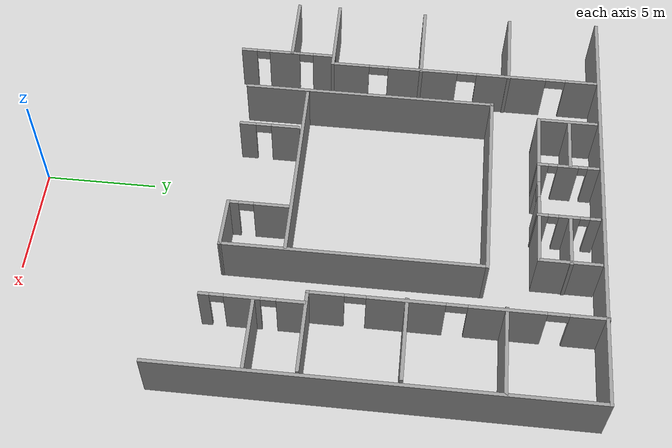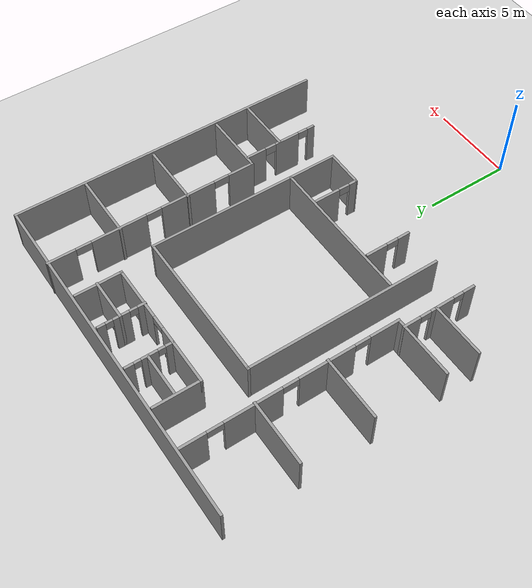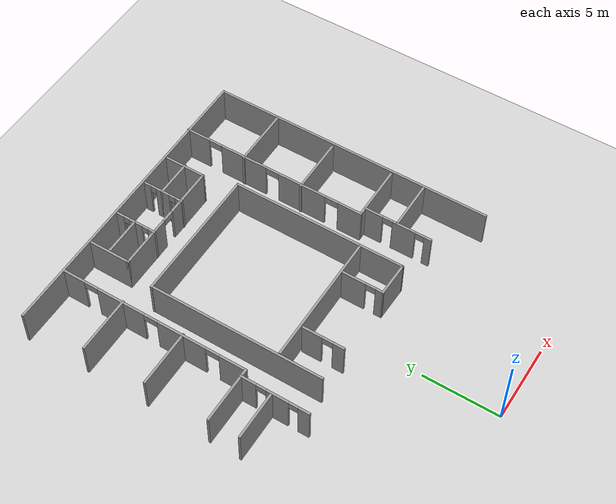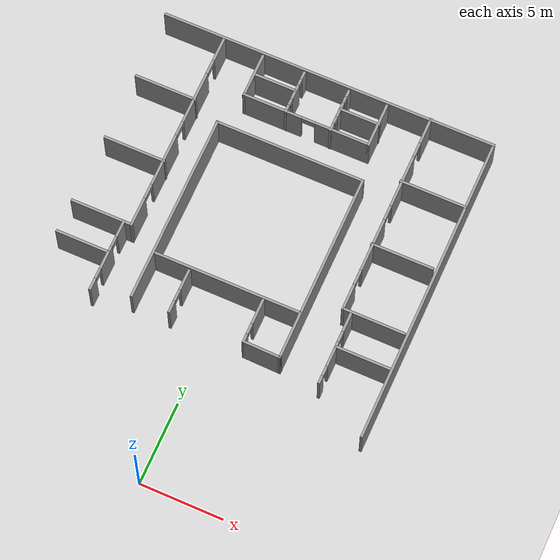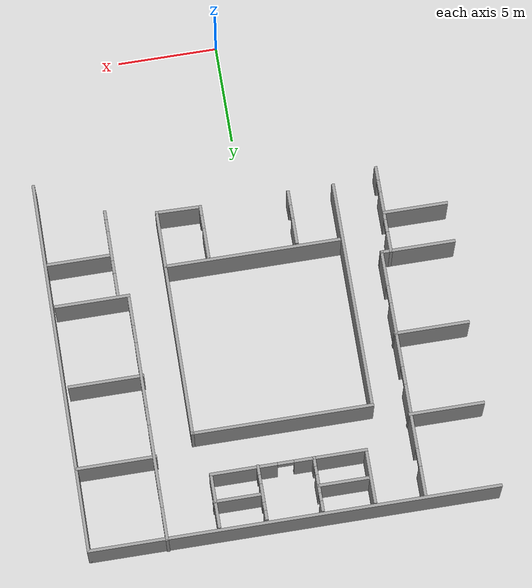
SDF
<sdf version="1.7">
 <world name="default">
  <model name="ground_plane">
   <static>1</static>
   <link name="link">
    <collision name="collision">
     <geometry><plane><normal>0 0 1</normal><size>100 100</size></plane></geometry>
     <surface><friction><ode><mu>100</mu><mu2>50</mu2></ode></friction></surface>
    </collision>
    <visual name="visual">
     <cast_shadows>0</cast_shadows>
     <geometry><plane><normal>0 0 1</normal><size>100 100</size></plane></geometry>
     <material>
      <script><uri>file://media/materials/scripts/gazebo.material</uri><name>Gazebo/Grey</name></script>
     </material>
    </visual>
   </link>
  </model>
  <model name="hospital_world">
   <pose>1.05255 5.28475 0 0 -0 0</pose>
   <link name="Wall_104">
    <collision name="Wall_104_Collision">
     <geometry><box><size>3.25 0.15 2.5</size></box></geometry>
     <pose>0 0 1.25 0 -0 0</pose>
    </collision>
    <visual name="Wall_104_Visual">
     <pose>0 0 1.25 0 -0 0</pose>
     <geometry><box><size>3.25 0.15 2.5</size></box></geometry>
     <material>
      <script><uri>file://media/materials/scripts/gazebo.material</uri><name>Gazebo/Grey</name></script>
      <ambient>1 1 1 1</ambient>
     </material>
     <meta><layer>0</layer></meta>
    </visual>
    <pose>-9.33553 5.41345 0 0 -0 0</pose>
   </link>
   <link name="Wall_107">
    <collision name="Wall_107_Collision">
     <geometry><box><size>2.75 0.15 2.5</size></box></geometry>
     <pose>0 0 1.25 0 -0 0</pose>
    </collision>
    <visual name="Wall_107_Visual">
     <pose>0 0 1.25 0 -0 0</pose>
     <geometry><box><size>2.75 0.15 2.5</size></box></geometry>
     <material>
      <script><uri>file://media/materials/scripts/gazebo.material</uri><name>Gazebo/Grey</name></script>
      <ambient>1 1 1 1</ambient>
     </material>
     <meta><layer>0</layer></meta>
    </visual>
    <pose>-4.86473 18.4237 0 0 -0 -1.5708</pose>
   </link>
   <link name="Wall_108">
    <pose>-1.06473 17.1237 0 0 -0 0</pose>
    <visual name="Wall_108_Visual_0">
     <pose>-2.06983 0 1.25 0 -0 0</pose>
     <geometry><box><size>3.61035 0.15 2.5</size></box></geometry>
     <material>
      <script><uri>file://media/materials/scripts/gazebo.material</uri><name>Gazebo/Grey</name></script>
      <ambient>1 1 1 1</ambient>
     </material>
     <meta><layer>0</layer></meta>
    </visual>
    <collision name="Wall_108_Collision_0">
     <geometry><box><size>3.61035 0.15 2.5</size></box></geometry>
     <pose>-2.06983 0 1.25 0 -0 0</pose>
    </collision>
    <visual name="Wall_108_Visual_1">
     <pose>2.20929 0 1.25 0 -0 0</pose>
     <geometry><box><size>3.33142 0.15 2.5</size></box></geometry>
     <material>
      <script><uri>file://media/materials/scripts/gazebo.material</uri><name>Gazebo/Grey</name></script>
      <ambient>1 1 1 1</ambient>
     </material>
     <meta><layer>0</layer></meta>
    </visual>
    <collision name="Wall_108_Collision_1">
     <geometry><box><size>3.33142 0.15 2.5</size></box></geometry>
     <pose>2.20929 0 1.25 0 -0 0</pose>
    </collision>
    <visual name="Wall_108_Visual_2">
     <pose>0.139461 0 2.25 0 -0 0</pose>
     <geometry><box><size>0.808229 0.15 0.5</size></box></geometry>
     <material>
      <script><uri>file://media/materials/scripts/gazebo.material</uri><name>Gazebo/Grey</name></script>
      <ambient>1 1 1 1</ambient>
     </material>
     <meta><layer>0</layer></meta>
    </visual>
    <collision name="Wall_108_Collision_2">
     <geometry><box><size>0.808229 0.15 0.5</size></box></geometry>
     <pose>0.139461 0 2.25 0 -0 0</pose>
    </collision>
   </link>
   <link name="Wall_109">
    <collision name="Wall_109_Collision">
     <geometry><box><size>2.75 0.15 2.5</size></box></geometry>
     <pose>0 0 1.25 0 -0 0</pose>
    </collision>
    <visual name="Wall_109_Visual">
     <pose>0 0 1.25 0 -0 0</pose>
     <geometry><box><size>2.75 0.15 2.5</size></box></geometry>
     <material>
      <script><uri>file://media/materials/scripts/gazebo.material</uri><name>Gazebo/Grey</name></script>
      <ambient>1 1 1 1</ambient>
     </material>
     <meta><layer>0</layer></meta>
    </visual>
    <pose>2.73527 18.4237 0 0 -0 1.5708</pose>
   </link>
   <link name="Wall_113">
    <collision name="Wall_113_Collision">
     <geometry><box><size>2.5 0.15 2.5</size></box></geometry>
     <pose>0 0 1.25 0 -0 0</pose>
    </collision>
    <visual name="Wall_113_Visual">
     <pose>0 0 1.25 0 -0 0</pose>
     <geometry><box><size>2.5 0.15 2.5</size></box></geometry>
     <material>
      <script><uri>file://media/materials/scripts/gazebo.material</uri><name>Gazebo/Grey</name></script>
      <ambient>1 1 1 1</ambient>
     </material>
     <meta><layer>0</layer></meta>
    </visual>
    <pose>-3.54473 18.5058 0 0 -0 0</pose>
   </link>
   <link name="Wall_115">
    <pose>-2.30971 18.4188 0 0 -0 -1.5708</pose>
    <visual name="Wall_115_Visual_0">
     <pose>-1.11227 0 1.25 0 -0 0</pose>
     <geometry><box><size>0.525457 0.15 2.5</size></box></geometry>
     <material>
      <script><uri>file://media/materials/scripts/gazebo.material</uri><name>Gazebo/Grey</name></script>
      <ambient>1 1 1 1</ambient>
     </material>
     <meta><layer>0</layer></meta>
    </visual>
    <collision name="Wall_115_Collision_0">
     <geometry><box><size>0.525457 0.15 2.5</size></box></geometry>
     <pose>-1.11227 0 1.25 0 -0 0</pose>
    </collision>
    <visual name="Wall_115_Visual_1">
     <pose>0.006111 0 1.25 0 -0 0</pose>
     <geometry><box><size>0.922114 0.15 2.5</size></box></geometry>
     <material>
      <script><uri>file://media/materials/scripts/gazebo.material</uri><name>Gazebo/Grey</name></script>
      <ambient>1 1 1 1</ambient>
     </material>
     <meta><layer>0</layer></meta>
    </visual>
    <collision name="Wall_115_Collision_1">
     <geometry><box><size>0.922114 0.15 2.5</size></box></geometry>
     <pose>0.006111 0 1.25 0 -0 0</pose>
    </collision>
    <visual name="Wall_115_Visual_2">
     <pose>1.12503 0 1.25 0 -0 0</pose>
     <geometry><box><size>0.499936 0.15 2.5</size></box></geometry>
     <material>
      <script><uri>file://media/materials/scripts/gazebo.material</uri><name>Gazebo/Grey</name></script>
      <ambient>1 1 1 1</ambient>
     </material>
     <meta><layer>0</layer></meta>
    </visual>
    <collision name="Wall_115_Collision_2">
     <geometry><box><size>0.499936 0.15 2.5</size></box></geometry>
     <pose>1.12503 0 1.25 0 -0 0</pose>
    </collision>
    <visual name="Wall_115_Visual_3">
     <pose>-0.652245 0 2.25 0 -0 0</pose>
     <geometry><box><size>0.394596 0.15 0.5</size></box></geometry>
     <material>
      <script><uri>file://media/materials/scripts/gazebo.material</uri><name>Gazebo/Grey</name></script>
      <ambient>1 1 1 1</ambient>
     </material>
     <meta><layer>0</layer></meta>
    </visual>
    <collision name="Wall_115_Collision_3">
     <geometry><box><size>0.394596 0.15 0.5</size></box></geometry>
     <pose>-0.652245 0 2.25 0 -0 0</pose>
    </collision>
    <visual name="Wall_115_Visual_4">
     <pose>0.671116 0 2.25 0 -0 0</pose>
     <geometry><box><size>0.407896 0.15 0.5</size></box></geometry>
     <material>
      <script><uri>file://media/materials/scripts/gazebo.material</uri><name>Gazebo/Grey</name></script>
      <ambient>1 1 1 1</ambient>
     </material>
     <meta><layer>0</layer></meta>
    </visual>
    <collision name="Wall_115_Collision_4">
     <geometry><box><size>0.407896 0.15 0.5</size></box></geometry>
     <pose>0.671116 0 2.25 0 -0 0</pose>
    </collision>
   </link>
   <link name="Wall_117">
    <pose>0.430111 18.3922 0 0 -0 -1.5708</pose>
    <visual name="Wall_117_Visual_0">
     <pose>-1.13887 0 1.25 0 -0 0</pose>
     <geometry><box><size>0.472258 0.15 2.5</size></box></geometry>
     <material>
      <script><uri>file://media/materials/scripts/gazebo.material</uri><name>Gazebo/Grey</name></script>
      <ambient>1 1 1 1</ambient>
     </material>
     <meta><layer>0</layer></meta>
    </visual>
    <collision name="Wall_117_Collision_0">
     <geometry><box><size>0.472258 0.15 2.5</size></box></geometry>
     <pose>-1.13887 0 1.25 0 -0 0</pose>
    </collision>
    <visual name="Wall_117_Visual_1">
     <pose>-0.033788 0 1.25 0 -0 0</pose>
     <geometry><box><size>0.922114 0.15 2.5</size></box></geometry>
     <material>
      <script><uri>file://media/materials/scripts/gazebo.material</uri><name>Gazebo/Grey</name></script>
      <ambient>1 1 1 1</ambient>
     </material>
     <meta><layer>0</layer></meta>
    </visual>
    <collision name="Wall_117_Collision_1">
     <geometry><box><size>0.922114 0.15 2.5</size></box></geometry>
     <pose>-0.033788 0 1.25 0 -0 0</pose>
    </collision>
    <visual name="Wall_117_Visual_2">
     <pose>1.12503 0 1.25 0 -0 0</pose>
     <geometry><box><size>0.499935 0.15 2.5</size></box></geometry>
     <material>
      <script><uri>file://media/materials/scripts/gazebo.material</uri><name>Gazebo/Grey</name></script>
      <ambient>1 1 1 1</ambient>
     </material>
     <meta><layer>0</layer></meta>
    </visual>
    <collision name="Wall_117_Collision_2">
     <geometry><box><size>0.499935 0.15 2.5</size></box></geometry>
     <pose>1.12503 0 1.25 0 -0 0</pose>
    </collision>
    <visual name="Wall_117_Visual_3">
     <pose>-0.698793 0 2.25 0 -0 0</pose>
     <geometry><box><size>0.407896 0.15 0.5</size></box></geometry>
     <material>
      <script><uri>file://media/materials/scripts/gazebo.material</uri><name>Gazebo/Grey</name></script>
      <ambient>1 1 1 1</ambient>
     </material>
     <meta><layer>0</layer></meta>
    </visual>
    <collision name="Wall_117_Collision_3">
     <geometry><box><size>0.407896 0.15 0.5</size></box></geometry>
     <pose>-0.698793 0 2.25 0 -0 0</pose>
    </collision>
    <visual name="Wall_117_Visual_4">
     <pose>0.651167 0 2.25 0 -0 0</pose>
     <geometry><box><size>0.447797 0.15 0.5</size></box></geometry>
     <material>
      <script><uri>file://media/materials/scripts/gazebo.material</uri><name>Gazebo/Grey</name></script>
      <ambient>1 1 1 1</ambient>
     </material>
     <meta><layer>0</layer></meta>
    </visual>
    <collision name="Wall_117_Collision_4">
     <geometry><box><size>0.447797 0.15 0.5</size></box></geometry>
     <pose>0.651167 0 2.25 0 -0 0</pose>
    </collision>
   </link>
   <link name="Wall_119">
    <collision name="Wall_119_Collision">
     <geometry><box><size>2.5 0.15 2.5</size></box></geometry>
     <pose>0 0 1.25 0 -0 0</pose>
    </collision>
    <visual name="Wall_119_Visual">
     <pose>0 0 1.25 0 -0 0</pose>
     <geometry><box><size>2.5 0.15 2.5</size></box></geometry>
     <material>
      <script><uri>file://media/materials/scripts/gazebo.material</uri><name>Gazebo/Grey</name></script>
      <ambient>1 1 1 1</ambient>
     </material>
     <meta><layer>0</layer></meta>
    </visual>
    <pose>1.60511 18.4792 0 0 -0 0</pose>
   </link>
   <link name="Wall_131">
    <collision name="Wall_131_Collision">
     <geometry><box><size>11.5 0.15 2.5</size></box></geometry>
     <pose>0 0 1.25 0 -0 0</pose>
    </collision>
    <visual name="Wall_131_Visual">
     <pose>0 0 1.25 0 -0 0</pose>
     <geometry><box><size>11.5 0.15 2.5</size></box></geometry>
     <material>
      <script><uri>file://media/materials/scripts/gazebo.material</uri><name>Gazebo/Grey</name></script>
      <ambient>1 1 1 1</ambient>
     </material>
     <meta><layer>0</layer></meta>
    </visual>
    <pose>-5.53184 9.2924 0 0 -0 -1.5708</pose>
   </link>
   <link name="Wall_133">
    <collision name="Wall_133_Collision">
     <geometry><box><size>11.5 0.15 2.5</size></box></geometry>
     <pose>0 0 1.25 0 -0 0</pose>
    </collision>
    <visual name="Wall_133_Visual">
     <pose>0 0 1.25 0 -0 0</pose>
     <geometry><box><size>11.5 0.15 2.5</size></box></geometry>
     <material>
      <script><uri>file://media/materials/scripts/gazebo.material</uri><name>Gazebo/Grey</name></script>
      <ambient>1 1 1 1</ambient>
     </material>
     <meta><layer>0</layer></meta>
    </visual>
    <pose>3.30287 9.2924 0 0 -0 1.5708</pose>
   </link>
   <link name="Wall_134">
    <collision name="Wall_134_Collision">
     <geometry><box><size>9 0.15 2.5</size></box></geometry>
     <pose>0 0 1.25 0 -0 0</pose>
    </collision>
    <visual name="Wall_134_Visual">
     <pose>0 0 1.25 0 -0 0</pose>
     <geometry><box><size>9 0.15 2.5</size></box></geometry>
     <material>
      <script><uri>file://media/materials/scripts/gazebo.material</uri><name>Gazebo/Grey</name></script>
      <ambient>1 1 1 1</ambient>
     </material>
     <meta><layer>0</layer></meta>
    </visual>
    <pose>-1.12213 14.9674 0 0 -0 3.14159</pose>
   </link>
   <link name="Wall_136">
    <collision name="Wall_136_Collision">
     <geometry><box><size>8.75 0.15 2.5</size></box></geometry>
     <pose>0 0 1.25 0 -0 0</pose>
    </collision>
    <visual name="Wall_136_Visual">
     <pose>0 0 1.25 0 -0 0</pose>
     <geometry><box><size>8.75 0.15 2.5</size></box></geometry>
     <material>
      <script><uri>file://media/materials/scripts/gazebo.material</uri><name>Gazebo/Grey</name></script>
      <ambient>1 1 1 1</ambient>
     </material>
     <meta><layer>0</layer></meta>
    </visual>
    <pose>-1.06193 6.42009 0 0 -0 0</pose>
   </link>
   <link name="Wall_144">
    <pose>-3.27395 4.90802 0 0 -0 -1.5708</pose>
    <visual name="Wall_144_Visual_0">
     <pose>-0.725746 0 1.25 0 -0 0</pose>
     <geometry><box><size>1.29851 0.15 2.5</size></box></geometry>
     <material>
      <script><uri>file://media/materials/scripts/gazebo.material</uri><name>Gazebo/Grey</name></script>
      <ambient>1 1 1 1</ambient>
     </material>
     <meta><layer>0</layer></meta>
    </visual>
    <collision name="Wall_144_Collision_0">
     <geometry><box><size>1.29851 0.15 2.5</size></box></geometry>
     <pose>-0.725746 0 1.25 0 -0 0</pose>
    </collision>
    <visual name="Wall_144_Visual_1">
     <pose>1.00095 0 1.25 0 -0 0</pose>
     <geometry><box><size>0.748103 0.15 2.5</size></box></geometry>
     <material>
      <script><uri>file://media/materials/scripts/gazebo.material</uri><name>Gazebo/Grey</name></script>
      <ambient>1 1 1 1</ambient>
     </material>
     <meta><layer>0</layer></meta>
    </visual>
    <collision name="Wall_144_Collision_1">
     <geometry><box><size>0.748103 0.15 2.5</size></box></geometry>
     <pose>1.00095 0 1.25 0 -0 0</pose>
    </collision>
    <visual name="Wall_144_Visual_2">
     <pose>0.275202 0 2.25 0 -0 0</pose>
     <geometry><box><size>0.70339 0.15 0.5</size></box></geometry>
     <material>
      <script><uri>file://media/materials/scripts/gazebo.material</uri><name>Gazebo/Grey</name></script>
      <ambient>1 1 1 1</ambient>
     </material>
     <meta><layer>0</layer></meta>
    </visual>
    <collision name="Wall_144_Collision_2">
     <geometry><box><size>0.70339 0.15 0.5</size></box></geometry>
     <pose>0.275202 0 2.25 0 -0 0</pose>
    </collision>
   </link>
   <link name="Wall_146">
    <pose>1.13162 4.96027 0 0 -0 -1.5708</pose>
    <visual name="Wall_146_Visual_0">
     <pose>-0.595533 0 1.25 0 -0 0</pose>
     <geometry><box><size>1.55893 0.15 2.5</size></box></geometry>
     <material>
      <script><uri>file://media/materials/scripts/gazebo.material</uri><name>Gazebo/Grey</name></script>
      <ambient>1 1 1 1</ambient>
     </material>
     <meta><layer>0</layer></meta>
    </visual>
    <collision name="Wall_146_Collision_0">
     <geometry><box><size>1.55893 0.15 2.5</size></box></geometry>
     <pose>-0.595533 0 1.25 0 -0 0</pose>
    </collision>
    <visual name="Wall_146_Visual_1">
     <pose>1.10803 0 1.25 0 -0 0</pose>
     <geometry><box><size>0.533938 0.15 2.5</size></box></geometry>
     <material>
      <script><uri>file://media/materials/scripts/gazebo.material</uri><name>Gazebo/Grey</name></script>
      <ambient>1 1 1 1</ambient>
     </material>
     <meta><layer>0</layer></meta>
    </visual>
    <collision name="Wall_146_Collision_1">
     <geometry><box><size>0.533938 0.15 2.5</size></box></geometry>
     <pose>1.10803 0 1.25 0 -0 0</pose>
    </collision>
    <visual name="Wall_146_Visual_2">
     <pose>0.512498 0 2.25 0 -0 0</pose>
     <geometry><box><size>0.657129 0.15 0.5</size></box></geometry>
     <material>
      <script><uri>file://media/materials/scripts/gazebo.material</uri><name>Gazebo/Grey</name></script>
      <ambient>1 1 1 1</ambient>
     </material>
     <meta><layer>0</layer></meta>
    </visual>
    <collision name="Wall_146_Collision_2">
     <geometry><box><size>0.657129 0.15 0.5</size></box></geometry>
     <pose>0.512498 0 2.25 0 -0 0</pose>
    </collision>
   </link>
   <link name="Wall_148">
    <collision name="Wall_148_Collision">
     <geometry><box><size>2.32167 0.15 2.5</size></box></geometry>
     <pose>0 0 1.25 0 -0 0</pose>
    </collision>
    <visual name="Wall_148_Visual">
     <pose>0 0 1.25 0 -0 0</pose>
     <geometry><box><size>2.32167 0.15 2.5</size></box></geometry>
     <material>
      <script><uri>file://media/materials/scripts/gazebo.material</uri><name>Gazebo/Grey</name></script>
      <ambient>1 1 1 1</ambient>
     </material>
     <meta><layer>0</layer></meta>
    </visual>
    <pose>2.21725 3.63883 0 0 -0 -0.019743</pose>
   </link>
   <link name="Wall_18">
    <pose>-7.31204 13.579 0 0 -0 -1.5708</pose>
    <visual name="Wall_18_Visual_0">
     <pose>-5.51242 0 1.25 0 -0 0</pose>
     <geometry><box><size>1.47516 0.15 2.5</size></box></geometry>
     <material>
      <script><uri>file://media/materials/scripts/gazebo.material</uri><name>Gazebo/Grey</name></script>
      <ambient>1 1 1 1</ambient>
     </material>
     <meta><layer>0</layer></meta>
    </visual>
    <collision name="Wall_18_Collision_0">
     <geometry><box><size>1.47516 0.15 2.5</size></box></geometry>
     <pose>-5.51242 0 1.25 0 -0 0</pose>
    </collision>
    <visual name="Wall_18_Visual_1">
     <pose>-2.24943 0 1.25 0 -0 0</pose>
     <geometry><box><size>3.25082 0.15 2.5</size></box></geometry>
     <material>
      <script><uri>file://media/materials/scripts/gazebo.material</uri><name>Gazebo/Grey</name></script>
      <ambient>1 1 1 1</ambient>
     </material>
     <meta><layer>0</layer></meta>
    </visual>
    <collision name="Wall_18_Collision_1">
     <geometry><box><size>3.25082 0.15 2.5</size></box></geometry>
     <pose>-2.24943 0 1.25 0 -0 0</pose>
    </collision>
    <visual name="Wall_18_Visual_2">
     <pose>1.90958 0 1.25 0 -0 0</pose>
     <geometry><box><size>3.2672 0.15 2.5</size></box></geometry>
     <material>
      <script><uri>file://media/materials/scripts/gazebo.material</uri><name>Gazebo/Grey</name></script>
      <ambient>1 1 1 1</ambient>
     </material>
     <meta><layer>0</layer></meta>
    </visual>
    <collision name="Wall_18_Collision_2">
     <geometry><box><size>3.2672 0.15 2.5</size></box></geometry>
     <pose>1.90958 0 1.25 0 -0 0</pose>
    </collision>
    <visual name="Wall_18_Visual_3">
     <pose>5.34659 0 1.25 0 -0 0</pose>
     <geometry><box><size>1.80682 0.15 2.5</size></box></geometry>
     <material>
      <script><uri>file://media/materials/scripts/gazebo.material</uri><name>Gazebo/Grey</name></script>
      <ambient>1 1 1 1</ambient>
     </material>
     <meta><layer>0</layer></meta>
    </visual>
    <collision name="Wall_18_Collision_3">
     <geometry><box><size>1.80682 0.15 2.5</size></box></geometry>
     <pose>5.34659 0 1.25 0 -0 0</pose>
    </collision>
    <visual name="Wall_18_Visual_4">
     <pose>-4.32484 0 2.25 0 -0 0</pose>
     <geometry><box><size>0.9 0.15 0.5</size></box></geometry>
     <material>
      <script><uri>file://media/materials/scripts/gazebo.material</uri><name>Gazebo/Grey</name></script>
      <ambient>1 1 1 1</ambient>
     </material>
     <meta><layer>0</layer></meta>
    </visual>
    <collision name="Wall_18_Collision_4">
     <geometry><box><size>0.9 0.15 0.5</size></box></geometry>
     <pose>-4.32484 0 2.25 0 -0 0</pose>
    </collision>
    <visual name="Wall_18_Visual_5">
     <pose>-0.174016 0 2.25 0 -0 0</pose>
     <geometry><box><size>0.9 0.15 0.5</size></box></geometry>
     <material>
      <script><uri>file://media/materials/scripts/gazebo.material</uri><name>Gazebo/Grey</name></script>
      <ambient>1 1 1 1</ambient>
     </material>
     <meta><layer>0</layer></meta>
    </visual>
    <collision name="Wall_18_Collision_5">
     <geometry><box><size>0.9 0.15 0.5</size></box></geometry>
     <pose>-0.174016 0 2.25 0 -0 0</pose>
    </collision>
    <visual name="Wall_18_Visual_6">
     <pose>3.99318 0 2.25 0 -0 0</pose>
     <geometry><box><size>0.9 0.15 0.5</size></box></geometry>
     <material>
      <script><uri>file://media/materials/scripts/gazebo.material</uri><name>Gazebo/Grey</name></script>
      <ambient>1 1 1 1</ambient>
     </material>
     <meta><layer>0</layer></meta>
    </visual>
    <collision name="Wall_18_Collision_6">
     <geometry><box><size>0.9 0.15 0.5</size></box></geometry>
     <pose>3.99318 0 2.25 0 -0 0</pose>
    </collision>
   </link>
   <link name="Wall_19">
    <collision name="Wall_19_Collision">
     <geometry><box><size>3.75 0.15 2.5</size></box></geometry>
     <pose>0 0 1.25 0 -0 0</pose>
    </collision>
    <visual name="Wall_19_Visual">
     <pose>0 0 1.25 0 -0 0</pose>
     <geometry><box><size>3.75 0.15 2.5</size></box></geometry>
     <material>
      <script><uri>file://media/materials/scripts/gazebo.material</uri><name>Gazebo/Grey</name></script>
      <ambient>1 1 1 1</ambient>
     </material>
     <meta><layer>0</layer></meta>
    </visual>
    <pose>-9.11204 7.40401 0 0 -0 3.14159</pose>
   </link>
   <link name="Wall_21">
    <pose>-7.76807 5.23849 0 0 -0 -1.5708</pose>
    <visual name="Wall_21_Visual_0">
     <pose>-1.71434 0 1.25 0 -0 0</pose>
     <geometry><box><size>1.07133 0.15 2.5</size></box></geometry>
     <material>
      <script><uri>file://media/materials/scripts/gazebo.material</uri><name>Gazebo/Grey</name></script>
      <ambient>1 1 1 1</ambient>
     </material>
     <meta><layer>0</layer></meta>
    </visual>
    <collision name="Wall_21_Collision_0">
     <geometry><box><size>1.07133 0.15 2.5</size></box></geometry>
     <pose>-1.71434 0 1.25 0 -0 0</pose>
    </collision>
    <visual name="Wall_21_Visual_1">
     <pose>0.184359 0 1.25 0 -0 0</pose>
     <geometry><box><size>1.44316 0.15 2.5</size></box></geometry>
     <material>
      <script><uri>file://media/materials/scripts/gazebo.material</uri><name>Gazebo/Grey</name></script>
      <ambient>1 1 1 1</ambient>
     </material>
     <meta><layer>0</layer></meta>
    </visual>
    <collision name="Wall_21_Collision_1">
     <geometry><box><size>1.44316 0.15 2.5</size></box></geometry>
     <pose>0.184359 0 1.25 0 -0 0</pose>
    </collision>
    <visual name="Wall_21_Visual_2">
     <pose>1.88349 0 1.25 0 -0 0</pose>
     <geometry><box><size>0.733026 0.15 2.5</size></box></geometry>
     <material>
      <script><uri>file://media/materials/scripts/gazebo.material</uri><name>Gazebo/Grey</name></script>
      <ambient>1 1 1 1</ambient>
     </material>
     <meta><layer>0</layer></meta>
    </visual>
    <collision name="Wall_21_Collision_2">
     <geometry><box><size>0.733026 0.15 2.5</size></box></geometry>
     <pose>1.88349 0 1.25 0 -0 0</pose>
    </collision>
    <visual name="Wall_21_Visual_3">
     <pose>-0.857948 0 2.25 0 -0 0</pose>
     <geometry><box><size>0.641451 0.15 0.5</size></box></geometry>
     <material>
      <script><uri>file://media/materials/scripts/gazebo.material</uri><name>Gazebo/Grey</name></script>
      <ambient>1 1 1 1</ambient>
     </material>
     <meta><layer>0</layer></meta>
    </visual>
    <collision name="Wall_21_Collision_3">
     <geometry><box><size>0.641451 0.15 0.5</size></box></geometry>
     <pose>-0.857948 0 2.25 0 -0 0</pose>
    </collision>
    <visual name="Wall_21_Visual_4">
     <pose>1.21146 0 2.25 0 -0 0</pose>
     <geometry><box><size>0.611034 0.15 0.5</size></box></geometry>
     <material>
      <script><uri>file://media/materials/scripts/gazebo.material</uri><name>Gazebo/Grey</name></script>
      <ambient>1 1 1 1</ambient>
     </material>
     <meta><layer>0</layer></meta>
    </visual>
    <collision name="Wall_21_Collision_4">
     <geometry><box><size>0.611034 0.15 0.5</size></box></geometry>
     <pose>1.21146 0 2.25 0 -0 0</pose>
    </collision>
   </link>
   <link name="Wall_24">
    <collision name="Wall_24_Collision">
     <geometry><box><size>3.75 0.15 2.5</size></box></geometry>
     <pose>0 0 1.25 0 -0 0</pose>
    </collision>
    <visual name="Wall_24_Visual">
     <pose>0 0 1.25 0 -0 0</pose>
     <geometry><box><size>3.75 0.15 2.5</size></box></geometry>
     <material>
      <script><uri>file://media/materials/scripts/gazebo.material</uri><name>Gazebo/Grey</name></script>
      <ambient>1 1 1 1</ambient>
     </material>
     <meta><layer>0</layer></meta>
    </visual>
    <pose>-9.0664 11.5943 0 0 -0 0</pose>
   </link>
   <link name="Wall_26">
    <collision name="Wall_26_Collision">
     <geometry><box><size>3.75 0.15 2.5</size></box></geometry>
     <pose>0 0 1.25 0 -0 0</pose>
    </collision>
    <visual name="Wall_26_Visual">
     <pose>0 0 1.25 0 -0 0</pose>
     <geometry><box><size>3.75 0.15 2.5</size></box></geometry>
     <material>
      <script><uri>file://media/materials/scripts/gazebo.material</uri><name>Gazebo/Grey</name></script>
      <ambient>1 1 1 1</ambient>
     </material>
     <meta><layer>0</layer></meta>
    </visual>
    <pose>-9.0664 15.7174 0 0 -0 0</pose>
   </link>
   <link name="Wall_31">
    <pose>5.31032 13.7717 0 0 -0 -1.5708</pose>
    <visual name="Wall_31_Visual_0">
     <pose>-5.42002 0 1.25 0 -0 0</pose>
     <geometry><box><size>1.65996 0.15 2.5</size></box></geometry>
     <material>
      <script><uri>file://media/materials/scripts/gazebo.material</uri><name>Gazebo/Grey</name></script>
      <ambient>1 1 1 1</ambient>
     </material>
     <meta><layer>0</layer></meta>
    </visual>
    <collision name="Wall_31_Collision_0">
     <geometry><box><size>1.65996 0.15 2.5</size></box></geometry>
     <pose>-5.42002 0 1.25 0 -0 0</pose>
    </collision>
    <visual name="Wall_31_Visual_1">
     <pose>-2.06834 0 1.25 0 -0 0</pose>
     <geometry><box><size>3.2434 0.15 2.5</size></box></geometry>
     <material>
      <script><uri>file://media/materials/scripts/gazebo.material</uri><name>Gazebo/Grey</name></script>
      <ambient>1 1 1 1</ambient>
     </material>
     <meta><layer>0</layer></meta>
    </visual>
    <collision name="Wall_31_Collision_1">
     <geometry><box><size>3.2434 0.15 2.5</size></box></geometry>
     <pose>-2.06834 0 1.25 0 -0 0</pose>
    </collision>
    <visual name="Wall_31_Visual_2">
     <pose>2.09517 0 1.25 0 -0 0</pose>
     <geometry><box><size>3.28362 0.15 2.5</size></box></geometry>
     <material>
      <script><uri>file://media/materials/scripts/gazebo.material</uri><name>Gazebo/Grey</name></script>
      <ambient>1 1 1 1</ambient>
     </material>
     <meta><layer>0</layer></meta>
    </visual>
    <collision name="Wall_31_Collision_2">
     <geometry><box><size>3.28362 0.15 2.5</size></box></geometry>
     <pose>2.09517 0 1.25 0 -0 0</pose>
    </collision>
    <visual name="Wall_31_Visual_3">
     <pose>5.44349 0 1.25 0 -0 0</pose>
     <geometry><box><size>1.61302 0.15 2.5</size></box></geometry>
     <material>
      <script><uri>file://media/materials/scripts/gazebo.material</uri><name>Gazebo/Grey</name></script>
      <ambient>1 1 1 1</ambient>
     </material>
     <meta><layer>0</layer></meta>
    </visual>
    <collision name="Wall_31_Collision_3">
     <geometry><box><size>1.61302 0.15 2.5</size></box></geometry>
     <pose>5.44349 0 1.25 0 -0 0</pose>
    </collision>
    <visual name="Wall_31_Visual_4">
     <pose>-4.14004 0 2.25 0 -0 0</pose>
     <geometry><box><size>0.9 0.15 0.5</size></box></geometry>
     <material>
      <script><uri>file://media/materials/scripts/gazebo.material</uri><name>Gazebo/Grey</name></script>
      <ambient>1 1 1 1</ambient>
     </material>
     <meta><layer>0</layer></meta>
    </visual>
    <collision name="Wall_31_Collision_4">
     <geometry><box><size>0.9 0.15 0.5</size></box></geometry>
     <pose>-4.14004 0 2.25 0 -0 0</pose>
    </collision>
    <visual name="Wall_31_Visual_5">
     <pose>0.003358 0 2.25 0 -0 0</pose>
     <geometry><box><size>0.9 0.15 0.5</size></box></geometry>
     <material>
      <script><uri>file://media/materials/scripts/gazebo.material</uri><name>Gazebo/Grey</name></script>
      <ambient>1 1 1 1</ambient>
     </material>
     <meta><layer>0</layer></meta>
    </visual>
    <collision name="Wall_31_Collision_5">
     <geometry><box><size>0.9 0.15 0.5</size></box></geometry>
     <pose>0.003358 0 2.25 0 -0 0</pose>
    </collision>
    <visual name="Wall_31_Visual_6">
     <pose>4.18698 0 2.25 0 -0 0</pose>
     <geometry><box><size>0.9 0.15 0.5</size></box></geometry>
     <material>
      <script><uri>file://media/materials/scripts/gazebo.material</uri><name>Gazebo/Grey</name></script>
      <ambient>1 1 1 1</ambient>
     </material>
     <meta><layer>0</layer></meta>
    </visual>
    <collision name="Wall_31_Collision_6">
     <geometry><box><size>0.9 0.15 0.5</size></box></geometry>
     <pose>4.18698 0 2.25 0 -0 0</pose>
    </collision>
   </link>
   <link name="Wall_32">
    <collision name="Wall_32_Collision">
     <geometry><box><size>3.75 0.15 2.5</size></box></geometry>
     <pose>0 0 1.25 0 -0 0</pose>
    </collision>
    <visual name="Wall_32_Visual">
     <pose>0 0 1.25 0 -0 0</pose>
     <geometry><box><size>3.75 0.15 2.5</size></box></geometry>
     <material>
      <script><uri>file://media/materials/scripts/gazebo.material</uri><name>Gazebo/Grey</name></script>
      <ambient>1 1 1 1</ambient>
     </material>
     <meta><layer>0</layer></meta>
    </visual>
    <pose>7.11032 7.59673 0 0 -0 0</pose>
   </link>
   <link name="Wall_34">
    <collision name="Wall_34_Collision">
     <geometry><box><size>3.75 0.15 2.5</size></box></geometry>
     <pose>0 0 1.25 0 -0 0</pose>
    </collision>
    <visual name="Wall_34_Visual">
     <pose>0 0 1.25 0 -0 0</pose>
     <geometry><box><size>3.75 0.15 2.5</size></box></geometry>
     <material>
      <script><uri>file://media/materials/scripts/gazebo.material</uri><name>Gazebo/Grey</name></script>
      <ambient>1 1 1 1</ambient>
     </material>
     <meta><layer>0</layer></meta>
    </visual>
    <pose>7.04914 11.718 0 0 -0 0</pose>
   </link>
   <link name="Wall_37">
    <collision name="Wall_37_Collision">
     <geometry><box><size>4 0.15 2.5</size></box></geometry>
     <pose>0 0 1.25 0 -0 0</pose>
    </collision>
    <visual name="Wall_37_Visual">
     <pose>0 0 1.25 0 -0 0</pose>
     <geometry><box><size>4 0.15 2.5</size></box></geometry>
     <material>
      <script><uri>file://media/materials/scripts/gazebo.material</uri><name>Gazebo/Grey</name></script>
      <ambient>1 1 1 1</ambient>
     </material>
     <meta><layer>0</layer></meta>
    </visual>
    <pose>7.17414 15.817 0 0 -0 0</pose>
   </link>
   <link name="Wall_39">
    <pose>5.82614 5.3492 0 0 -0 -1.5708</pose>
    <visual name="Wall_39_Visual_0">
     <pose>-1.63241 0 1.25 0 -0 0</pose>
     <geometry><box><size>1.23518 0.15 2.5</size></box></geometry>
     <material>
      <script><uri>file://media/materials/scripts/gazebo.material</uri><name>Gazebo/Grey</name></script>
      <ambient>1 1 1 1</ambient>
     </material>
     <meta><layer>0</layer></meta>
    </visual>
    <collision name="Wall_39_Collision_0">
     <geometry><box><size>1.23518 0.15 2.5</size></box></geometry>
     <pose>-1.63241 0 1.25 0 -0 0</pose>
    </collision>
    <visual name="Wall_39_Visual_1">
     <pose>0.41069 0 1.25 0 -0 0</pose>
     <geometry><box><size>1.53374 0.15 2.5</size></box></geometry>
     <material>
      <script><uri>file://media/materials/scripts/gazebo.material</uri><name>Gazebo/Grey</name></script>
      <ambient>1 1 1 1</ambient>
     </material>
     <meta><layer>0</layer></meta>
    </visual>
    <collision name="Wall_39_Collision_1">
     <geometry><box><size>1.53374 0.15 2.5</size></box></geometry>
     <pose>0.41069 0 1.25 0 -0 0</pose>
    </collision>
    <visual name="Wall_39_Visual_2">
     <pose>2.01293 0 1.25 0 -0 0</pose>
     <geometry><box><size>0.474142 0.15 2.5</size></box></geometry>
     <material>
      <script><uri>file://media/materials/scripts/gazebo.material</uri><name>Gazebo/Grey</name></script>
      <ambient>1 1 1 1</ambient>
     </material>
     <meta><layer>0</layer></meta>
    </visual>
    <collision name="Wall_39_Collision_2">
     <geometry><box><size>0.474142 0.15 2.5</size></box></geometry>
     <pose>2.01293 0 1.25 0 -0 0</pose>
    </collision>
    <visual name="Wall_39_Visual_3">
     <pose>-0.6855 0 2.25 0 -0 0</pose>
     <geometry><box><size>0.658637 0.15 0.5</size></box></geometry>
     <material>
      <script><uri>file://media/materials/scripts/gazebo.material</uri><name>Gazebo/Grey</name></script>
      <ambient>1 1 1 1</ambient>
     </material>
     <meta><layer>0</layer></meta>
    </visual>
    <collision name="Wall_39_Collision_3">
     <geometry><box><size>0.658637 0.15 0.5</size></box></geometry>
     <pose>-0.6855 0 2.25 0 -0 0</pose>
    </collision>
    <visual name="Wall_39_Visual_4">
     <pose>1.47671 0 2.25 0 -0 0</pose>
     <geometry><box><size>0.598296 0.15 0.5</size></box></geometry>
     <material>
      <script><uri>file://media/materials/scripts/gazebo.material</uri><name>Gazebo/Grey</name></script>
      <ambient>1 1 1 1</ambient>
     </material>
     <meta><layer>0</layer></meta>
    </visual>
    <collision name="Wall_39_Collision_4">
     <geometry><box><size>0.598296 0.15 0.5</size></box></geometry>
     <pose>1.47671 0 2.25 0 -0 0</pose>
    </collision>
   </link>
   <link name="Wall_42">
    <collision name="Wall_42_Collision">
     <geometry><box><size>3.25 0.15 2.5</size></box></geometry>
     <pose>0 0 1.25 0 -0 0</pose>
    </collision>
    <visual name="Wall_42_Visual">
     <pose>0 0 1.25 0 -0 0</pose>
     <geometry><box><size>3.25 0.15 2.5</size></box></geometry>
     <material>
      <script><uri>file://media/materials/scripts/gazebo.material</uri><name>Gazebo/Grey</name></script>
      <ambient>1 1 1 1</ambient>
     </material>
     <meta><layer>0</layer></meta>
    </visual>
    <pose>7.42682 5.41471 0 0 -0 0</pose>
   </link>
   <link name="Wall_5">
    <collision name="Wall_5_Collision">
     <geometry><box><size>20.25 0.15 2.5</size></box></geometry>
     <pose>0 0 1.25 0 -0 0</pose>
    </collision>
    <visual name="Wall_5_Visual">
     <pose>0 0 1.25 0 -0 0</pose>
     <geometry><box><size>20.25 0.15 2.5</size></box></geometry>
     <material>
      <script><uri>file://media/materials/scripts/gazebo.material</uri><name>Gazebo/Grey</name></script>
      <ambient>1 1 1 1</ambient>
     </material>
     <meta><layer>0</layer></meta>
    </visual>
    <pose>-0.924999 19.9033 0 0 -0 0</pose>
   </link>
   <link name="Wall_6">
    <collision name="Wall_6_Collision">
     <geometry><box><size>18.75 0.15 2.5</size></box></geometry>
     <pose>0 0 1.25 0 -0 0</pose>
    </collision>
    <visual name="Wall_6_Visual">
     <pose>0 0 1.25 0 -0 0</pose>
     <geometry><box><size>18.75 0.15 2.5</size></box></geometry>
     <material>
      <script><uri>file://media/materials/scripts/gazebo.material</uri><name>Gazebo/Grey</name></script>
      <ambient>1 1 1 1</ambient>
     </material>
     <meta><layer>0</layer></meta>
    </visual>
    <pose>9.125 10.6033 0 0 -0 -1.5708</pose>
   </link>
   <static>1</static>
  </model>
 </world>
</sdf>
